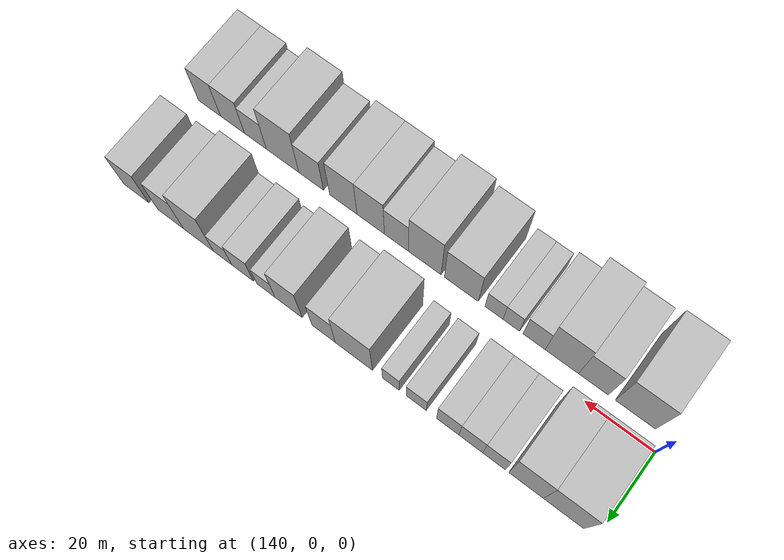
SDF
<sdf version="1.6">
 <world name="default">
  <model name="building_17">
   <static>1</static>
   <pose>149.2212 14.5000 0 0.000000 0.000000 1.570796</pose>
   <link name="link">
    <pose>0 0 12.00 0 0 0</pose>
    <collision name="collision"><geometry><box><size>20.0000 11.2969 24.0000</size></box></geometry></collision>
    <visual name="visual">
     <cast_shadows>0</cast_shadows>
     <geometry><box><size>20.0000 11.2969 24.0000</size></box></geometry>
     <material>
      <script>
       <uri>model://HANNAS_wall/materials/scripts</uri>
       <uri>model://HANNAS_wall/materials/textures</uri>
       <name>vrc/HANNAS_wall</name>
      </script>
     </material>
    </visual>
   </link>
  </model>
  <model name="building_18">
   <static>1</static>
   <pose>159.7557 14.5000 0 0.000000 0.000000 1.570796</pose>
   <link name="link">
    <pose>0 0 12.00 0 0 0</pose>
    <collision name="collision"><geometry><box><size>20.0000 9.7722 24.0000</size></box></geometry></collision>
    <visual name="visual">
     <cast_shadows>0</cast_shadows>
     <geometry><box><size>20.0000 9.7722 24.0000</size></box></geometry>
     <material>
      <script>
       <uri>model://HANNAS_wall/materials/scripts</uri>
       <uri>model://HANNAS_wall/materials/textures</uri>
       <name>vrc/HANNAS_wall</name>
      </script>
     </material>
    </visual>
   </link>
  </model>
  <model name="building_19">
   <static>1</static>
   <pose>168.8953 14.5000 0 0.000000 0.000000 1.570796</pose>
   <link name="link">
    <pose>0 0 7.50 0 0 0</pose>
    <collision name="collision"><geometry><box><size>20.0000 6.5069 15.0000</size></box></geometry></collision>
    <visual name="visual">
     <cast_shadows>0</cast_shadows>
     <geometry><box><size>20.0000 6.5069 15.0000</size></box></geometry>
     <material>
      <script>
       <uri>model://HANNAS_wall/materials/scripts</uri>
       <uri>model://HANNAS_wall/materials/textures</uri>
       <name>vrc/HANNAS_wall</name>
      </script>
     </material>
    </visual>
   </link>
  </model>
  <model name="building_20">
   <static>1</static>
   <pose>175.5884 14.5000 0 0.000000 0.000000 1.570796</pose>
   <link name="link">
    <pose>0 0 7.50 0 0 0</pose>
    <collision name="collision"><geometry><box><size>20.0000 6.8795 15.0000</size></box></geometry></collision>
    <visual name="visual">
     <cast_shadows>0</cast_shadows>
     <geometry><box><size>20.0000 6.8795 15.0000</size></box></geometry>
     <material>
      <script>
       <uri>model://HANNAS_wall/materials/scripts</uri>
       <uri>model://HANNAS_wall/materials/textures</uri>
       <name>vrc/HANNAS_wall</name>
      </script>
     </material>
    </visual>
   </link>
  </model>
  <model name="building_21">
   <static>1</static>
   <pose>182.3086 14.5000 0 0.000000 0.000000 1.570796</pose>
   <link name="link">
    <pose>0 0 7.50 0 0 0</pose>
    <collision name="collision"><geometry><box><size>20.0000 6.5608 15.0000</size></box></geometry></collision>
    <visual name="visual">
     <cast_shadows>0</cast_shadows>
     <geometry><box><size>20.0000 6.5608 15.0000</size></box></geometry>
     <material>
      <script>
       <uri>model://HANNAS_wall/materials/scripts</uri>
       <uri>model://HANNAS_wall/materials/textures</uri>
       <name>vrc/HANNAS_wall</name>
      </script>
     </material>
    </visual>
   </link>
  </model>
  <model name="building_22">
   <static>1</static>
   <pose>191.5790 14.5000 0 0.000000 0.000000 1.570796</pose>
   <link name="link">
    <pose>0 0 6.00 0 0 0</pose>
    <collision name="collision"><geometry><box><size>20.0000 5.9800 12.0000</size></box></geometry></collision>
    <visual name="visual">
     <cast_shadows>0</cast_shadows>
     <geometry><box><size>20.0000 5.9800 12.0000</size></box></geometry>
     <material>
      <script>
       <uri>model://HANNAS_wall/materials/scripts</uri>
       <uri>model://HANNAS_wall/materials/textures</uri>
       <name>vrc/HANNAS_wall</name>
      </script>
     </material>
    </visual>
   </link>
  </model>
  <model name="building_23">
   <static>1</static>
   <pose>199.0759 14.5000 0 0.000000 0.000000 1.570796</pose>
   <link name="link">
    <pose>0 0 6.00 0 0 0</pose>
    <collision name="collision"><geometry><box><size>20.0000 5.0139 12.0000</size></box></geometry></collision>
    <visual name="visual">
     <cast_shadows>0</cast_shadows>
     <geometry><box><size>20.0000 5.0139 12.0000</size></box></geometry>
     <material>
      <script>
       <uri>model://HANNAS_wall/materials/scripts</uri>
       <uri>model://HANNAS_wall/materials/textures</uri>
       <name>vrc/HANNAS_wall</name>
      </script>
     </material>
    </visual>
   </link>
  </model>
  <model name="building_24">
   <static>1</static>
   <pose>210.2397 14.5000 0 0.000000 0.000000 1.570796</pose>
   <link name="link">
    <pose>0 0 12.00 0 0 0</pose>
    <collision name="collision"><geometry><box><size>20.0000 11.3136 24.0000</size></box></geometry></collision>
    <visual name="visual">
     <cast_shadows>0</cast_shadows>
     <geometry><box><size>20.0000 11.3136 24.0000</size></box></geometry>
     <material>
      <script>
       <uri>model://HANNAS_wall/materials/scripts</uri>
       <uri>model://HANNAS_wall/materials/textures</uri>
       <name>vrc/HANNAS_wall</name>
      </script>
     </material>
    </visual>
   </link>
  </model>
  <model name="building_25">
   <static>1</static>
   <pose>219.5023 14.5000 0 0.000000 0.000000 1.570796</pose>
   <link name="link">
    <pose>0 0 9.00 0 0 0</pose>
    <collision name="collision"><geometry><box><size>20.0000 7.2116 18.0000</size></box></geometry></collision>
    <visual name="visual">
     <cast_shadows>0</cast_shadows>
     <geometry><box><size>20.0000 7.2116 18.0000</size></box></geometry>
     <material>
      <script>
       <uri>model://HANNAS_wall/materials/scripts</uri>
       <uri>model://HANNAS_wall/materials/textures</uri>
       <name>vrc/HANNAS_wall</name>
      </script>
     </material>
    </visual>
   </link>
  </model>
  <model name="building_26">
   <static>1</static>
   <pose>230.3308 14.5000 0 0.000000 0.000000 1.570796</pose>
   <link name="link">
    <pose>0 0 10.50 0 0 0</pose>
    <collision name="collision"><geometry><box><size>20.0000 8.4454 21.0000</size></box></geometry></collision>
    <visual name="visual">
     <cast_shadows>0</cast_shadows>
     <geometry><box><size>20.0000 8.4454 21.0000</size></box></geometry>
     <material>
      <script>
       <uri>model://HANNAS_wall/materials/scripts</uri>
       <uri>model://HANNAS_wall/materials/textures</uri>
       <name>vrc/HANNAS_wall</name>
      </script>
     </material>
    </visual>
   </link>
  </model>
  <model name="building_27">
   <static>1</static>
   <pose>237.4444 14.5000 0 0.000000 0.000000 1.570796</pose>
   <link name="link">
    <pose>0 0 6.00 0 0 0</pose>
    <collision name="collision"><geometry><box><size>20.0000 5.7818 12.0000</size></box></geometry></collision>
    <visual name="visual">
     <cast_shadows>0</cast_shadows>
     <geometry><box><size>20.0000 5.7818 12.0000</size></box></geometry>
     <material>
      <script>
       <uri>model://HANNAS_wall/materials/scripts</uri>
       <uri>model://HANNAS_wall/materials/textures</uri>
       <name>vrc/HANNAS_wall</name>
      </script>
     </material>
    </visual>
   </link>
  </model>
  <model name="building_28">
   <static>1</static>
   <pose>244.7989 14.5000 0 0.000000 0.000000 1.570796</pose>
   <link name="link">
    <pose>0 0 7.50 0 0 0</pose>
    <collision name="collision"><geometry><box><size>20.0000 6.9273 15.0000</size></box></geometry></collision>
    <visual name="visual">
     <cast_shadows>0</cast_shadows>
     <geometry><box><size>20.0000 6.9273 15.0000</size></box></geometry>
     <material>
      <script>
       <uri>model://HANNAS_wall/materials/scripts</uri>
       <uri>model://HANNAS_wall/materials/textures</uri>
       <name>vrc/HANNAS_wall</name>
      </script>
     </material>
    </visual>
   </link>
  </model>
  <model name="building_29">
   <static>1</static>
   <pose>251.2158 14.5000 0 0.000000 0.000000 1.570796</pose>
   <link name="link">
    <pose>0 0 6.00 0 0 0</pose>
    <collision name="collision"><geometry><box><size>20.0000 5.9065 12.0000</size></box></geometry></collision>
    <visual name="visual">
     <cast_shadows>0</cast_shadows>
     <geometry><box><size>20.0000 5.9065 12.0000</size></box></geometry>
     <material>
      <script>
       <uri>model://HANNAS_wall/materials/scripts</uri>
       <uri>model://HANNAS_wall/materials/textures</uri>
       <name>vrc/HANNAS_wall</name>
      </script>
     </material>
    </visual>
   </link>
  </model>
  <model name="building_30">
   <static>1</static>
   <pose>259.0124 14.5000 0 0.000000 0.000000 1.570796</pose>
   <link name="link">
    <pose>0 0 12.00 0 0 0</pose>
    <collision name="collision"><geometry><box><size>20.0000 9.6868 24.0000</size></box></geometry></collision>
    <visual name="visual">
     <cast_shadows>0</cast_shadows>
     <geometry><box><size>20.0000 9.6868 24.0000</size></box></geometry>
     <material>
      <script>
       <uri>model://HANNAS_wall/materials/scripts</uri>
       <uri>model://HANNAS_wall/materials/textures</uri>
       <name>vrc/HANNAS_wall</name>
      </script>
     </material>
    </visual>
   </link>
  </model>
  <model name="building_31">
   <static>1</static>
   <pose>268.0664 14.5000 0 0.000000 0.000000 1.570796</pose>
   <link name="link">
    <pose>0 0 9.00 0 0 0</pose>
    <collision name="collision"><geometry><box><size>20.0000 8.4212 18.0000</size></box></geometry></collision>
    <visual name="visual">
     <cast_shadows>0</cast_shadows>
     <geometry><box><size>20.0000 8.4212 18.0000</size></box></geometry>
     <material>
      <script>
       <uri>model://HANNAS_wall/materials/scripts</uri>
       <uri>model://HANNAS_wall/materials/textures</uri>
       <name>vrc/HANNAS_wall</name>
      </script>
     </material>
    </visual>
   </link>
  </model>
  <model name="building_32">
   <static>1</static>
   <pose>279.4104 14.5000 0 0.000000 0.000000 1.570796</pose>
   <link name="link">
    <pose>0 0 9.00 0 0 0</pose>
    <collision name="collision"><geometry><box><size>20.0000 8.2668 18.0000</size></box></geometry></collision>
    <visual name="visual">
     <cast_shadows>0</cast_shadows>
     <geometry><box><size>20.0000 8.2668 18.0000</size></box></geometry>
     <material>
      <script>
       <uri>model://HANNAS_wall/materials/scripts</uri>
       <uri>model://HANNAS_wall/materials/textures</uri>
       <name>vrc/HANNAS_wall</name>
      </script>
     </material>
    </visual>
   </link>
  </model>
  <model name="building_46">
   <static>1</static>
   <pose>148.5924 -14.5000 0 0.000000 0.000000 1.570796</pose>
   <link name="link">
    <pose>0 0 12.00 0 0 0</pose>
    <collision name="collision"><geometry><box><size>20.0000 11.3633 24.0000</size></box></geometry></collision>
    <visual name="visual">
     <cast_shadows>0</cast_shadows>
     <geometry><box><size>20.0000 11.3633 24.0000</size></box></geometry>
     <material>
      <script>
       <uri>model://HANNAS_wall/materials/scripts</uri>
       <uri>model://HANNAS_wall/materials/textures</uri>
       <name>vrc/HANNAS_wall</name>
      </script>
     </material>
    </visual>
   </link>
  </model>
  <model name="building_47">
   <static>1</static>
   <pose>160.5470 -14.5000 0 0.000000 0.000000 1.570796</pose>
   <link name="link">
    <pose>0 0 10.50 0 0 0</pose>
    <collision name="collision"><geometry><box><size>20.0000 8.5459 21.0000</size></box></geometry></collision>
    <visual name="visual">
     <cast_shadows>0</cast_shadows>
     <geometry><box><size>20.0000 8.5459 21.0000</size></box></geometry>
     <material>
      <script>
       <uri>model://HANNAS_wall/materials/scripts</uri>
       <uri>model://HANNAS_wall/materials/textures</uri>
       <name>vrc/HANNAS_wall</name>
      </script>
     </material>
    </visual>
   </link>
  </model>
  <model name="building_48">
   <static>1</static>
   <pose>169.6706 -14.5000 0 0.000000 0.000000 1.570796</pose>
   <link name="link">
    <pose>0 0 12.00 0 0 0</pose>
    <collision name="collision"><geometry><box><size>20.0000 9.7012 24.0000</size></box></geometry></collision>
    <visual name="visual">
     <cast_shadows>0</cast_shadows>
     <geometry><box><size>20.0000 9.7012 24.0000</size></box></geometry>
     <material>
      <script>
       <uri>model://HANNAS_wall/materials/scripts</uri>
       <uri>model://HANNAS_wall/materials/textures</uri>
       <name>vrc/HANNAS_wall</name>
      </script>
     </material>
    </visual>
   </link>
  </model>
  <model name="building_49">
   <static>1</static>
   <pose>177.7854 -14.5000 0 0.000000 0.000000 1.570796</pose>
   <link name="link">
    <pose>0 0 7.50 0 0 0</pose>
    <collision name="collision"><geometry><box><size>20.0000 6.5284 15.0000</size></box></geometry></collision>
    <visual name="visual">
     <cast_shadows>0</cast_shadows>
     <geometry><box><size>20.0000 6.5284 15.0000</size></box></geometry>
     <material>
      <script>
       <uri>model://HANNAS_wall/materials/scripts</uri>
       <uri>model://HANNAS_wall/materials/textures</uri>
       <name>vrc/HANNAS_wall</name>
      </script>
     </material>
    </visual>
   </link>
  </model>
  <model name="building_50">
   <static>1</static>
   <pose>184.5117 -14.5000 0 0.000000 0.000000 1.570796</pose>
   <link name="link">
    <pose>0 0 6.00 0 0 0</pose>
    <collision name="collision"><geometry><box><size>20.0000 4.9244 12.0000</size></box></geometry></collision>
    <visual name="visual">
     <cast_shadows>0</cast_shadows>
     <geometry><box><size>20.0000 4.9244 12.0000</size></box></geometry>
     <material>
      <script>
       <uri>model://HANNAS_wall/materials/scripts</uri>
       <uri>model://HANNAS_wall/materials/textures</uri>
       <name>vrc/HANNAS_wall</name>
      </script>
     </material>
    </visual>
   </link>
  </model>
  <model name="building_51">
   <static>1</static>
   <pose>189.6761 -14.5000 0 0.000000 0.000000 1.570796</pose>
   <link name="link">
    <pose>0 0 6.00 0 0 0</pose>
    <collision name="collision"><geometry><box><size>20.0000 5.4043 12.0000</size></box></geometry></collision>
    <visual name="visual">
     <cast_shadows>0</cast_shadows>
     <geometry><box><size>20.0000 5.4043 12.0000</size></box></geometry>
     <material>
      <script>
       <uri>model://HANNAS_wall/materials/scripts</uri>
       <uri>model://HANNAS_wall/materials/textures</uri>
       <name>vrc/HANNAS_wall</name>
      </script>
     </material>
    </visual>
   </link>
  </model>
  <model name="building_52">
   <static>1</static>
   <pose>199.5108 -14.5000 0 0.000000 0.000000 1.570796</pose>
   <link name="link">
    <pose>0 0 10.50 0 0 0</pose>
    <collision name="collision"><geometry><box><size>20.0000 10.2652 21.0000</size></box></geometry></collision>
    <visual name="visual">
     <cast_shadows>0</cast_shadows>
     <geometry><box><size>20.0000 10.2652 21.0000</size></box></geometry>
     <material>
      <script>
       <uri>model://HANNAS_wall/materials/scripts</uri>
       <uri>model://HANNAS_wall/materials/textures</uri>
       <name>vrc/HANNAS_wall</name>
      </script>
     </material>
    </visual>
   </link>
  </model>
  <model name="building_53">
   <static>1</static>
   <pose>210.6467 -14.5000 0 0.000000 0.000000 1.570796</pose>
   <link name="link">
    <pose>0 0 12.00 0 0 0</pose>
    <collision name="collision"><geometry><box><size>20.0000 10.0066 24.0000</size></box></geometry></collision>
    <visual name="visual">
     <cast_shadows>0</cast_shadows>
     <geometry><box><size>20.0000 10.0066 24.0000</size></box></geometry>
     <material>
      <script>
       <uri>model://HANNAS_wall/materials/scripts</uri>
       <uri>model://HANNAS_wall/materials/textures</uri>
       <name>vrc/HANNAS_wall</name>
      </script>
     </material>
    </visual>
   </link>
  </model>
  <model name="building_54">
   <static>1</static>
   <pose>219.3950 -14.5000 0 0.000000 0.000000 1.570796</pose>
   <link name="link">
    <pose>0 0 9.00 0 0 0</pose>
    <collision name="collision"><geometry><box><size>20.0000 7.4900 18.0000</size></box></geometry></collision>
    <visual name="visual">
     <cast_shadows>0</cast_shadows>
     <geometry><box><size>20.0000 7.4900 18.0000</size></box></geometry>
     <material>
      <script>
       <uri>model://HANNAS_wall/materials/scripts</uri>
       <uri>model://HANNAS_wall/materials/textures</uri>
       <name>vrc/HANNAS_wall</name>
      </script>
     </material>
    </visual>
   </link>
  </model>
  <model name="building_55">
   <static>1</static>
   <pose>227.4463 -14.5000 0 0.000000 0.000000 1.570796</pose>
   <link name="link">
    <pose>0 0 10.50 0 0 0</pose>
    <collision name="collision"><geometry><box><size>20.0000 8.6125 21.0000</size></box></geometry></collision>
    <visual name="visual">
     <cast_shadows>0</cast_shadows>
     <geometry><box><size>20.0000 8.6125 21.0000</size></box></geometry>
     <material>
      <script>
       <uri>model://HANNAS_wall/materials/scripts</uri>
       <uri>model://HANNAS_wall/materials/textures</uri>
       <name>vrc/HANNAS_wall</name>
      </script>
     </material>
    </visual>
   </link>
  </model>
  <model name="building_56">
   <static>1</static>
   <pose>236.0894 -14.5000 0 0.000000 0.000000 1.570796</pose>
   <link name="link">
    <pose>0 0 10.50 0 0 0</pose>
    <collision name="collision"><geometry><box><size>20.0000 8.6738 21.0000</size></box></geometry></collision>
    <visual name="visual">
     <cast_shadows>0</cast_shadows>
     <geometry><box><size>20.0000 8.6738 21.0000</size></box></geometry>
     <material>
      <script>
       <uri>model://HANNAS_wall/materials/scripts</uri>
       <uri>model://HANNAS_wall/materials/textures</uri>
       <name>vrc/HANNAS_wall</name>
      </script>
     </material>
    </visual>
   </link>
  </model>
  <model name="building_57">
   <static>1</static>
   <pose>246.3865 -14.5000 0 0.000000 0.000000 1.570796</pose>
   <link name="link">
    <pose>0 0 9.00 0 0 0</pose>
    <collision name="collision"><geometry><box><size>20.0000 7.9202 18.0000</size></box></geometry></collision>
    <visual name="visual">
     <cast_shadows>0</cast_shadows>
     <geometry><box><size>20.0000 7.9202 18.0000</size></box></geometry>
     <material>
      <script>
       <uri>model://HANNAS_wall/materials/scripts</uri>
       <uri>model://HANNAS_wall/materials/textures</uri>
       <name>vrc/HANNAS_wall</name>
      </script>
     </material>
    </visual>
   </link>
  </model>
  <model name="building_58">
   <static>1</static>
   <pose>255.6386 -14.5000 0 0.000000 0.000000 1.570796</pose>
   <link name="link">
    <pose>0 0 12.00 0 0 0</pose>
    <collision name="collision"><geometry><box><size>20.0000 10.5840 24.0000</size></box></geometry></collision>
    <visual name="visual">
     <cast_shadows>0</cast_shadows>
     <geometry><box><size>20.0000 10.5840 24.0000</size></box></geometry>
     <material>
      <script>
       <uri>model://HANNAS_wall/materials/scripts</uri>
       <uri>model://HANNAS_wall/materials/textures</uri>
       <name>vrc/HANNAS_wall</name>
      </script>
     </material>
    </visual>
   </link>
  </model>
  <model name="building_59">
   <static>1</static>
   <pose>264.5419 -14.5000 0 0.000000 0.000000 1.570796</pose>
   <link name="link">
    <pose>0 0 7.50 0 0 0</pose>
    <collision name="collision"><geometry><box><size>20.0000 7.2226 15.0000</size></box></geometry></collision>
    <visual name="visual">
     <cast_shadows>0</cast_shadows>
     <geometry><box><size>20.0000 7.2226 15.0000</size></box></geometry>
     <material>
      <script>
       <uri>model://HANNAS_wall/materials/scripts</uri>
       <uri>model://HANNAS_wall/materials/textures</uri>
       <name>vrc/HANNAS_wall</name>
      </script>
     </material>
    </visual>
   </link>
  </model>
  <model name="building_60">
   <static>1</static>
   <pose>272.1348 -14.5000 0 0.000000 0.000000 1.570796</pose>
   <link name="link">
    <pose>0 0 9.00 0 0 0</pose>
    <collision name="collision"><geometry><box><size>20.0000 7.9630 18.0000</size></box></geometry></collision>
    <visual name="visual">
     <cast_shadows>0</cast_shadows>
     <geometry><box><size>20.0000 7.9630 18.0000</size></box></geometry>
     <material>
      <script>
       <uri>model://HANNAS_wall/materials/scripts</uri>
       <uri>model://HANNAS_wall/materials/textures</uri>
       <name>vrc/HANNAS_wall</name>
      </script>
     </material>
    </visual>
   </link>
  </model>
  <model name="building_61">
   <static>1</static>
   <pose>279.8317 -14.5000 0 0.000000 0.000000 1.570796</pose>
   <link name="link">
    <pose>0 0 9.00 0 0 0</pose>
    <collision name="collision"><geometry><box><size>20.0000 7.4309 18.0000</size></box></geometry></collision>
    <visual name="visual">
     <cast_shadows>0</cast_shadows>
     <geometry><box><size>20.0000 7.4309 18.0000</size></box></geometry>
     <material>
      <script>
       <uri>model://HANNAS_wall/materials/scripts</uri>
       <uri>model://HANNAS_wall/materials/textures</uri>
       <name>vrc/HANNAS_wall</name>
      </script>
     </material>
    </visual>
   </link>
  </model>
 </world>
</sdf>
